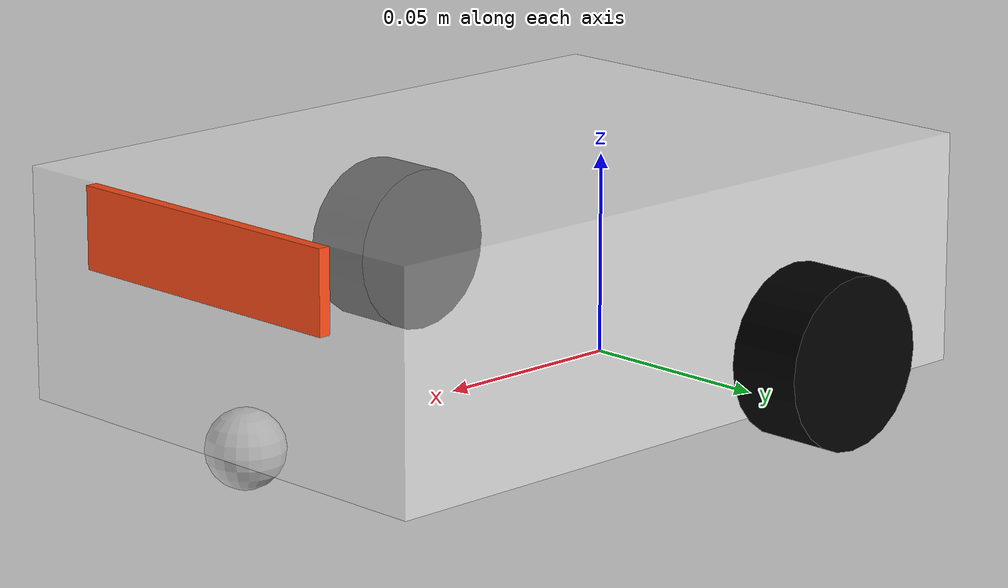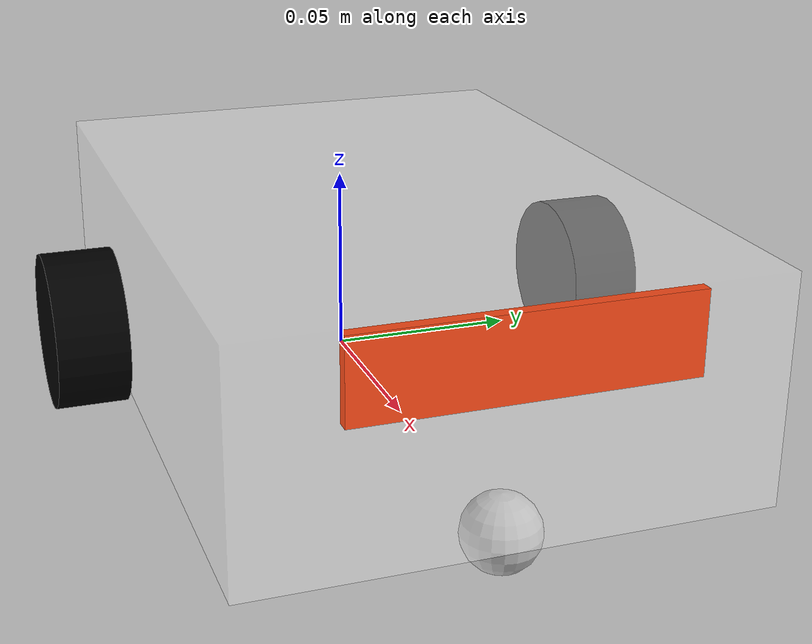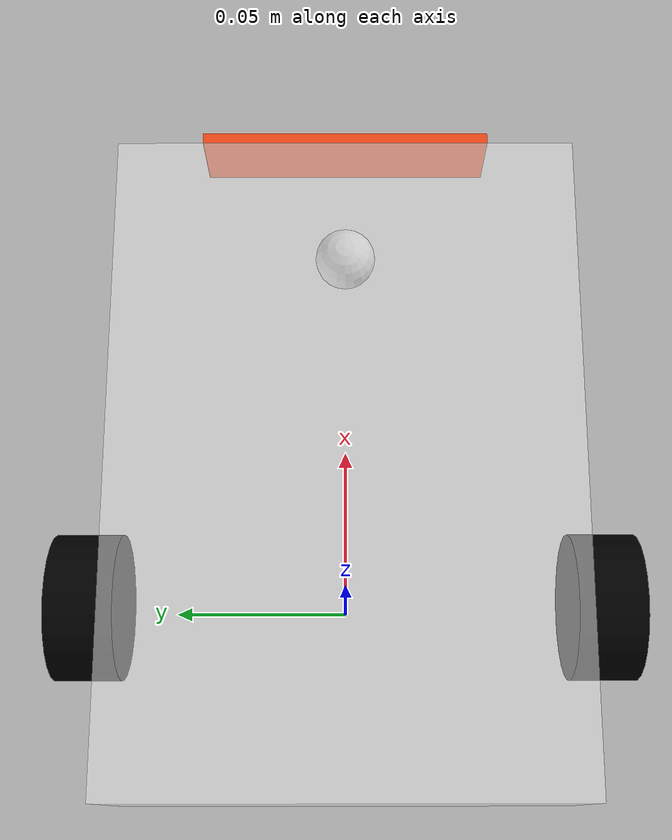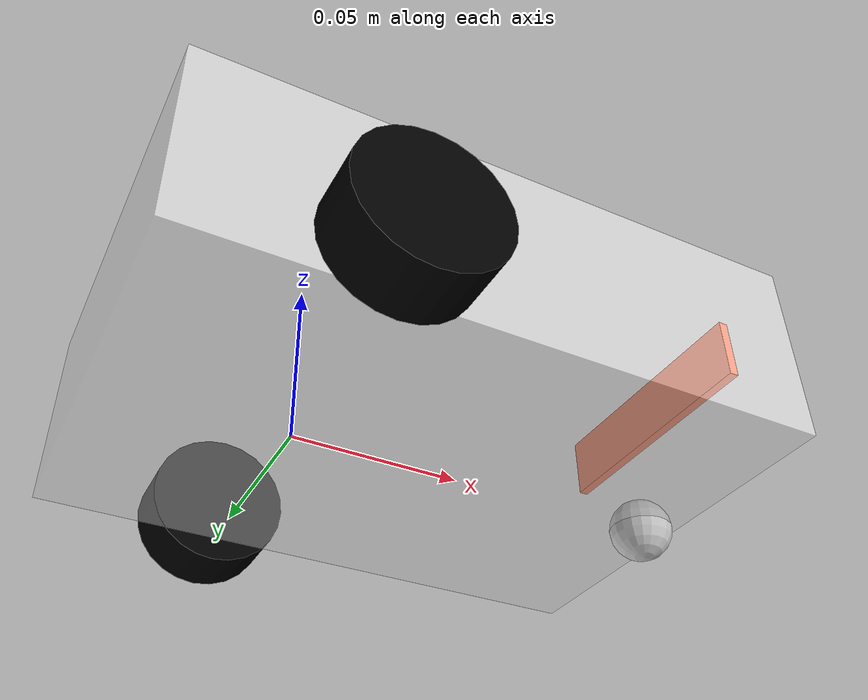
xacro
<?xml version="1.0"?>
<robot xmlns:xacro="http://www.ros.org/wiki/xacro" name="zulu_robot">

    <xacro:include filename="properties.xacro"/>

    <xacro:include filename="robot_core.xacro"/>

    <!-- Agregamos un link raíz común -->
    <link name="odom"/>

    <!-- Robot real -->
    <xacro:robot_core prefix="real_"/>

    <!-- Joint fijo que conecta el odom al robot real -->
    <joint name="odom_to_real" type="fixed">
        <parent link="odom"/>
        <child link="real_base_link"/>
    </joint>

    <!-- Robot ideal -->
    <xacro:robot_core prefix="ideal_"/>

    <!-- Joint fijo que conecta el odom al robot ideal -->
    <joint name="odom_to_ideal" type="fixed">
        <parent link="odom"/>
        <child link="ideal_base_link"/>
    </joint>

</robot>

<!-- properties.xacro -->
<robot xmlns:xacro="http://www.ros.org/wiki/xacro">
    <!-- Color Definitions -->
    <material name="white">
        <color rgba= "1 1 1 0.5"/>
    </material>

    <material name="orange">
        <color rgba= "1 0.3 0.1 1"/>
    </material>

    <material name="blue">
        <color rgba= "0.2 0.2 1 1"/>
    </material>

    <material name="black">
        <color rgba= "0 0 0 1"/>
    </material>

    <material name="red">
        <color rgba= "1 0 0 1"/>
    </material>

    <material name="gray">
        <color rgba= "0.75 0.75 0.75 1"/>
    </material>

</robot>

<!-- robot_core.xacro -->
<robot xmlns:xacro="http://www.ros.org/wiki/xacro">

    <xacro:macro name="robot_core" params="prefix">

        <!-- Example link -->
        <xacro:include filename="inertial_macros.xacro"/>

        <xacro:property name="rad_w" value="${0.042/2}"/>
        <xacro:property name="le_w" value="0.019"/>
        <xacro:property name="ly" value="0.12766"/>
        <xacro:property name="lx" value="0.18"/>
        <xacro:property name="lz" value="0.0569"/>

        <xacro:property name="off_lower_wcenter" value="0.013904"/>
        <xacro:property name="wheel_position" value="0.055340"/>
        <xacro:property name="caster_r" value="0.009525"/>

        <xacro:property name="ultra_x" value="0.003"/>
        <xacro:property name="ultra_y" value="0.08"/>
        <xacro:property name="ultra_z" value="0.02"/>

        <!-- Example link -->
        <link name="${prefix}base_link">
        </link>

        <joint name="${prefix}base_link" type="fixed">
            <parent link="${prefix}base_link"/>
            <child link="${prefix}chassis"/>
            <origin xyz="-${wheel_position} 0 0"/>
        </joint>

        <!-- chassis link -->
        <link name="${prefix}chassis">
            <visual>
                <origin xyz="${lx/2} 0 ${lz/2}"/>
                <geometry>
                    <box size="${lx} ${ly} ${lz}"/>
                </geometry>
                <material name="white"/>
            </visual>
            <collision>
                <origin xyz="${lx/2} 0 ${lz/2}"/>
                <geometry>
                <box size="${lx} ${ly} ${lz}"/>
                </geometry>
            </collision>
            <xacro:inertial_box mass="0.5" x="${lx}" y="${ly}" z="${lz}">
                <origin xyz="${lx/2} 0 ${lz/2}" rpy="0 0 0"/>
            </xacro:inertial_box>
        </link>

        <!-- Ultrasonic sensor joint -->
        <joint name="${prefix}chassis_ultrasonic_joint" type="fixed">
            <parent link="${prefix}base_link"/>
            <child link="${prefix}ultrasonic"/>
            <origin xyz="${lx/2+(lx/2 - wheel_position)} 0 ${lz}" rpy="0 0 0"/>
        </joint>

        <!-- Ultrasonic sensor link -->
        <link name="${prefix}ultrasonic">
            <visual>
                <origin xyz="${ultra_x/2} 0 -${ultra_z/2}"/>
                <geometry>
                    <box size="${ultra_x} ${ultra_y} ${ultra_z}"/>
                </geometry>
                <material name="orange"/>
            </visual>
            <collision>
                <origin xyz="${ultra_x/2} 0 -${ultra_z/2}"/>
                <geometry>
                    <box size="${ultra_x} ${ultra_y} ${ultra_z}"/>
                </geometry>
            </collision>
            <xacro:inertial_box mass="0.05" x="${ultra_x}" y="${ultra_y}" z="${ultra_z}">
                <origin xyz="${ultra_x/2} 0 ${ultra_z/2}" rpy="0 0 0"/>
            </xacro:inertial_box>
        </link>

        <!-- left wheel joint -->
        <joint name="${prefix}left_wheel_joint" type="continuous">
            <parent link="${prefix}chassis"/>
            <child link="${prefix}left_wheel"/>
            <origin xyz="${wheel_position} ${ly/2+le_w/2} ${off_lower_wcenter}" rpy="-${pi/2} 0 0"/>
            <axis xyz="0 0 1"/>
        </joint>

        <!-- left wheel link -->
        <link name="${prefix}left_wheel">
            <visual>
                <geometry>
                    <cylinder radius="${rad_w}" length="${le_w}"/>
                </geometry>
                <material name="black"/>
            </visual>
            <collision>
                <geometry>
                    <cylinder radius="${rad_w}" length="${le_w}"/>
                </geometry>
            </collision>
            <xacro:inertial_cylinder mass="0.1" length="${le_w}" radius="${rad_w}">
                <origin xyz="0 0 0" rpy="0 0 0"/>
            </xacro:inertial_cylinder>
        </link>

        <!-- right wheel joint -->
        <joint name="${prefix}right_wheel_joint" type="continuous">
            <parent link="${prefix}chassis"/>
            <child link="${prefix}right_wheel"/>
            <origin xyz="${wheel_position} -${ly/2+le_w/2} ${off_lower_wcenter}" rpy="${pi/2} 0 0"/>
            <axis xyz="0 0 -1"/>
        </joint>

        <!-- right wheel link -->
        <link name="${prefix}right_wheel">
            <visual>
                <geometry>
                    <cylinder radius="${rad_w}" length="${le_w}"/>
                </geometry>
                <material name="black"/>
            </visual>
            <collision>
                <geometry>
                    <cylinder radius="${rad_w}" length="${le_w}"/>
                </geometry>
            </collision>
            <xacro:inertial_cylinder mass="0.1" length="${le_w}" radius="${rad_w}">
                <origin xyz="0 0 0" rpy="0 0 0"/>
            </xacro:inertial_cylinder>
        </link>

        <!-- caster wheel joint -->
        <joint name="${prefix}caster_wheel_joint" type="fixed">
            <parent link="${prefix}chassis"/>
            <child link="${prefix}caster_wheel"/>
            <origin xyz="${lx-caster_r} 0 0"/>
        </joint>

        <!-- left wheel link -->
        <link name="${prefix}caster_wheel">
            <visual>
                <geometry>
                    <sphere radius="${caster_r}"/>
                </geometry>
                <material name="gray"/>
            </visual>
            <collision>
                <geometry>
                    <sphere radius="0.05"/>
                </geometry>
            </collision>
            <xacro:inertial_sphere mass="0.1" radius="0.05">
                <origin xyz="0 0 0" rpy="0 0 0"/>
            </xacro:inertial_sphere>
        </link>

    </xacro:macro>
</robot>
